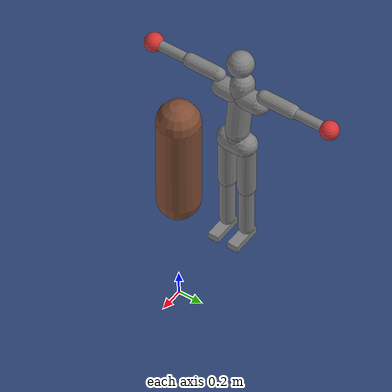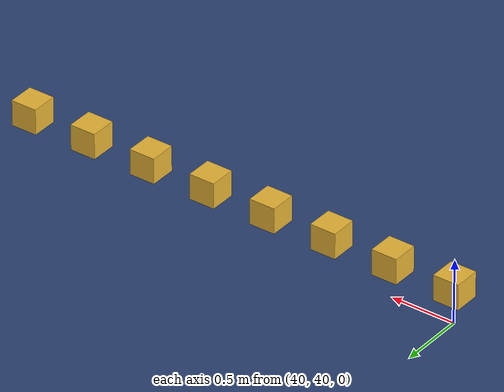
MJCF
<mujoco model="matt_bag">
  <compiler angle="degree" inertiafromgeom="true" autolimits="true"/>
  <option timestep="0.005" iterations="10" ls_iterations="10" integrator="implicitfast">
    <flag eulerdamp="disable"/>
  </option>
  <default>
    <geom contype="1" conaffinity="1" condim="3" friction="1.0 0.005 0.0001" density="1000" margin="0"/>
    <joint limited="true"/>
    <position ctrllimited="true"/>
  </default>
  <asset>
    <texture name="grid" type="2d" builtin="checker" rgb1=".18 .28 .48" rgb2=".14 .22 .40" width="300" height="300"/>
    <material name="grid" texture="grid" texrepeat="6 6" reflectance="0"/>
  </asset>
  <worldbody>
    <light pos="0 0 5" dir="0 0 -1" directional="true"/>
    <geom name="floor" type="plane" size="0 0 0.05" material="grid" friction="1.0 0.005 0.0001"/>

    <body name="a_pelvis" pos="-0.7500 0.0000 0.9733" quat="1.00000 0 0 0.00000">
      <freejoint name="a_root"/>
      <geom name="a_pelvis_geom" type="capsule" fromto="0.0000 -0.0700 0.0000 0.0000 0.0700 0.0000" size="0.0976" mass="7.5566" />
      <geom name="a_pelvis_up" type="capsule" fromto="0.0000 0.0000 0.0000 -0.0008 0.0000 0.0758" size="0.0878" mass="4.3714" />
      <body name="a_torso" pos="-0.0008 0.0000 0.0958">
        <joint name="a_abdomen_z" type="hinge" axis="0 0 1" range="-45 45" damping="0.5" armature="0.08" stiffness="0"/>
        <joint name="a_abdomen_y" type="hinge" axis="0 1 0" range="-60 30" damping="0.5" armature="0.08" stiffness="0"/>
        <joint name="a_abdomen_x" type="hinge" axis="1 0 0" range="-35 35" damping="0.5" armature="0.08" stiffness="0"/>
        <geom name="a_torso_geom" type="capsule" fromto="0.0000 0.0000 0.0200 -0.0653 -0.0000 0.4511" size="0.0937" mass="29.8200" />
        <geom name="a_chest_geom" type="capsule" fromto="-0.0402 -0.1614 0.3530 -0.0402 0.1614 0.3530" size="0.0843" mass="0.5"/>
        <geom name="a_head_geom" type="sphere" pos="-0.0385 -0.0000 0.6830" size="0.1049" mass="6.8040" />
        <body name="a_upper_arm_l" pos="-0.0503 0.2018 0.4412">
          <joint name="a_shoulder_x_l" type="hinge" axis="1 0 0" range="-170 30" damping="0.5" armature="0.03" stiffness="0"/>
          <joint name="a_shoulder_z_l" type="hinge" axis="0 0 1" range="-110 110" damping="0.5" armature="0.03" stiffness="0"/>
          <geom name="a_upper_arm_l_geom" type="capsule" fromto="0.0000 0.0000 0.0000 0.0000 0.2524 0.0000" size="0.0571" mass="2.3520" />
          <body name="a_forearm_l" pos="0.0000 0.2524 0.0000">
            <joint name="a_elbow_l" type="hinge" axis="0 0 1" range="-150 0" damping="0.5" armature="0.02" stiffness="0"/>
            <geom name="a_forearm_l_geom" type="capsule" fromto="0.0000 0.0000 0.0000 0.0000 0.2567 0.0000" size="0.0408" mass="1.3440" />
            <geom name="a_glove_l" type="sphere" pos="0.0000 0.3242 0.0000" size="0.0750" mass="0.7870" rgba="0.85 0.2 0.2 1"/>
          </body>
        </body>
        <body name="a_upper_arm_r" pos="-0.0503 -0.2018 0.4412">
          <joint name="a_shoulder_x_r" type="hinge" axis="1 0 0" range="-30 170" damping="0.5" armature="0.03" stiffness="0"/>
          <joint name="a_shoulder_z_r" type="hinge" axis="0 0 1" range="-110 110" damping="0.5" armature="0.03" stiffness="0"/>
          <geom name="a_upper_arm_r_geom" type="capsule" fromto="0.0000 0.0000 0.0000 0.0000 -0.2524 0.0000" size="0.0571" mass="2.3520" />
          <body name="a_forearm_r" pos="0.0000 -0.2524 0.0000">
            <joint name="a_elbow_r" type="hinge" axis="0 0 1" range="0 150" damping="0.5" armature="0.02" stiffness="0"/>
            <geom name="a_forearm_r_geom" type="capsule" fromto="0.0000 0.0000 0.0000 0.0000 -0.2567 0.0000" size="0.0408" mass="1.3440" />
            <geom name="a_glove_r" type="sphere" pos="0.0000 -0.3242 0.0000" size="0.0750" mass="0.7870" rgba="0.85 0.2 0.2 1"/>
          </body>
        </body>
      </body>
      <body name="a_thigh_l" pos="0.0008 0.0857 -0.0302">
        <joint name="a_hip_x_l" type="hinge" axis="1 0 0" range="-40 40" damping="0.5" armature="0.1" stiffness="0"/>
        <joint name="a_hip_z_l" type="hinge" axis="0 0 1" range="-35 35" damping="0.5" armature="0.1" stiffness="0"/>
        <joint name="a_hip_y_l" type="hinge" axis="0 1 0" range="-120 30" damping="0.5" armature="0.1" stiffness="0"/>
        <geom name="a_thigh_l_geom" type="capsule" fromto="0.0000 0.0000 0.0000 0.0000 0.0000 -0.4154" size="0.0737" mass="8.4000" />
        <body name="a_shin_l" pos="0.0000 0.0000 -0.4154">
          <joint name="a_knee_l" type="hinge" axis="0 1 0" range="0 150" damping="0.5" armature="0.1" stiffness="0"/>
          <geom name="a_shin_l_geom" type="capsule" fromto="0.0000 0.0000 0.0000 0.0000 0.0000 -0.4309" size="0.0608" mass="3.9060" />
          <body name="a_foot_l" pos="0.0000 0.0000 -0.4309">
            <joint name="a_ankle_y_l" type="hinge" axis="0 1 0" range="-20 50" damping="0.5" armature="0.03" stiffness="0"/>
            <joint name="a_ankle_x_l" type="hinge" axis="1 0 0" range="-25 25" damping="0.5" armature="0.03" stiffness="0"/>
            <geom name="a_foot_l_geom" type="box" pos="0.0581 0.0000 -0.0700" size="0.1262 0.0450 0.0280" mass="1.2180" friction="1.0 0.005 0.0001"/>
            <site name="a_foot_l_site" pos="0.0581 0.0000 -0.0700" size="0.01"/>
          </body>
        </body>
      </body>
      <body name="a_thigh_r" pos="0.0008 -0.0857 -0.0302">
        <joint name="a_hip_x_r" type="hinge" axis="1 0 0" range="-40 40" damping="0.5" armature="0.1" stiffness="0"/>
        <joint name="a_hip_z_r" type="hinge" axis="0 0 1" range="-35 35" damping="0.5" armature="0.1" stiffness="0"/>
        <joint name="a_hip_y_r" type="hinge" axis="0 1 0" range="-120 30" damping="0.5" armature="0.1" stiffness="0"/>
        <geom name="a_thigh_r_geom" type="capsule" fromto="0.0000 0.0000 0.0000 0.0000 0.0000 -0.4154" size="0.0737" mass="8.4000" />
        <body name="a_shin_r" pos="0.0000 0.0000 -0.4154">
          <joint name="a_knee_r" type="hinge" axis="0 1 0" range="0 150" damping="0.5" armature="0.1" stiffness="0"/>
          <geom name="a_shin_r_geom" type="capsule" fromto="0.0000 0.0000 0.0000 0.0000 0.0000 -0.4309" size="0.0608" mass="3.9060" />
          <body name="a_foot_r" pos="0.0000 0.0000 -0.4309">
            <joint name="a_ankle_y_r" type="hinge" axis="0 1 0" range="-20 50" damping="0.5" armature="0.03" stiffness="0"/>
            <joint name="a_ankle_x_r" type="hinge" axis="1 0 0" range="-25 25" damping="0.5" armature="0.03" stiffness="0"/>
            <geom name="a_foot_r_geom" type="box" pos="0.0581 0.0000 -0.0700" size="0.1262 0.0450 0.0280" mass="1.2180" friction="1.0 0.005 0.0001"/>
            <site name="a_foot_r_site" pos="0.0581 0.0000 -0.0700" size="0.01"/>
          </body>
        </body>
      </body>
    </body>
    <body name="bag" pos="0 0 2.45">
      <joint name="bag_swing" type="ball" damping="6"/>
      <geom name="bag_geom" type="capsule" fromto="0 0 -0.62 0 0 -1.42" size="0.17" mass="35" rgba="0.5 0.3 0.2 1"/>
      <site name="bag_head" pos="0 0 -0.82" size="0.02"/>
      <site name="bag_body" pos="0 0 -1.22" size="0.02"/>
    </body>
    <body name="cube_0" pos="40.0000 40.0000 0.3000"><freejoint name="cube_0"/><geom name="cube_0_geom" type="box" size="0.1 0.1 0.1" mass="1.0" rgba="0.9 0.7 0.2 1"/></body>
    <body name="cube_1" pos="40.5000 40.0000 0.3000"><freejoint name="cube_1"/><geom name="cube_1_geom" type="box" size="0.1 0.1 0.1" mass="1.0" rgba="0.9 0.7 0.2 1"/></body>
    <body name="cube_2" pos="41.0000 40.0000 0.3000"><freejoint name="cube_2"/><geom name="cube_2_geom" type="box" size="0.1 0.1 0.1" mass="1.0" rgba="0.9 0.7 0.2 1"/></body>
    <body name="cube_3" pos="41.5000 40.0000 0.3000"><freejoint name="cube_3"/><geom name="cube_3_geom" type="box" size="0.1 0.1 0.1" mass="1.0" rgba="0.9 0.7 0.2 1"/></body>
    <body name="cube_4" pos="42.0000 40.0000 0.3000"><freejoint name="cube_4"/><geom name="cube_4_geom" type="box" size="0.1 0.1 0.1" mass="1.0" rgba="0.9 0.7 0.2 1"/></body>
    <body name="cube_5" pos="42.5000 40.0000 0.3000"><freejoint name="cube_5"/><geom name="cube_5_geom" type="box" size="0.1 0.1 0.1" mass="1.0" rgba="0.9 0.7 0.2 1"/></body>
    <body name="cube_6" pos="43.0000 40.0000 0.3000"><freejoint name="cube_6"/><geom name="cube_6_geom" type="box" size="0.1 0.1 0.1" mass="1.0" rgba="0.9 0.7 0.2 1"/></body>
    <body name="cube_7" pos="43.5000 40.0000 0.3000"><freejoint name="cube_7"/><geom name="cube_7_geom" type="box" size="0.1 0.1 0.1" mass="1.0" rgba="0.9 0.7 0.2 1"/></body>
  </worldbody>
  <contact>
    <exclude body1="a_pelvis" body2="a_torso"/>
    <exclude body1="a_pelvis" body2="a_thigh_l"/>
    <exclude body1="a_thigh_l" body2="a_shin_l"/>
    <exclude body1="a_shin_l" body2="a_foot_l"/>
    <exclude body1="a_torso" body2="a_upper_arm_l"/>
    <exclude body1="a_upper_arm_l" body2="a_forearm_l"/>
    <exclude body1="a_pelvis" body2="a_thigh_r"/>
    <exclude body1="a_thigh_r" body2="a_shin_r"/>
    <exclude body1="a_shin_r" body2="a_foot_r"/>
    <exclude body1="a_torso" body2="a_upper_arm_r"/>
    <exclude body1="a_upper_arm_r" body2="a_forearm_r"/>
  </contact>
  <actuator>
    <position name="a_abdomen_z" joint="a_abdomen_z" kp="473.85" kv="22.113" forcerange="-179.01 179.01" ctrlrange="-0.7854 0.7854"/>
    <position name="a_abdomen_y" joint="a_abdomen_y" kp="473.85" kv="22.113" forcerange="-179.01 179.01" ctrlrange="-1.0472 0.5236"/>
    <position name="a_abdomen_x" joint="a_abdomen_x" kp="473.85" kv="22.113" forcerange="-179.01 179.01" ctrlrange="-0.6109 0.6109"/>
    <position name="a_shoulder_x_l" joint="a_shoulder_x_l" kp="168.48" kv="8.424" forcerange="-105.3 105.3" ctrlrange="-2.9671 0.5236"/>
    <position name="a_shoulder_z_l" joint="a_shoulder_z_l" kp="168.48" kv="8.424" forcerange="-105.3 105.3" ctrlrange="-1.9199 1.9199"/>
    <position name="a_elbow_l" joint="a_elbow_l" kp="115.83" kv="5.791" forcerange="-73.71 73.71" ctrlrange="-2.6180 0.0000"/>
    <position name="a_shoulder_x_r" joint="a_shoulder_x_r" kp="168.48" kv="8.424" forcerange="-105.3 105.3" ctrlrange="-0.5236 2.9671"/>
    <position name="a_shoulder_z_r" joint="a_shoulder_z_r" kp="168.48" kv="8.424" forcerange="-105.3 105.3" ctrlrange="-1.9199 1.9199"/>
    <position name="a_elbow_r" joint="a_elbow_r" kp="115.83" kv="5.791" forcerange="-73.71 73.71" ctrlrange="0.0000 2.6180"/>
    <position name="a_hip_x_l" joint="a_hip_x_l" kp="631.8" kv="31.59" forcerange="-252.72 252.72" ctrlrange="-0.6981 0.6981"/>
    <position name="a_hip_z_l" joint="a_hip_z_l" kp="631.8" kv="31.59" forcerange="-252.72 252.72" ctrlrange="-0.6109 0.6109"/>
    <position name="a_hip_y_l" joint="a_hip_y_l" kp="631.8" kv="31.59" forcerange="-252.72 252.72" ctrlrange="-2.0944 0.5236"/>
    <position name="a_knee_l" joint="a_knee_l" kp="631.8" kv="31.59" forcerange="-273.78 273.78" ctrlrange="0.0000 2.6180"/>
    <position name="a_ankle_y_l" joint="a_ankle_y_l" kp="789.75" kv="31.59" forcerange="-231.66 231.66" ctrlrange="-0.3491 0.8727"/>
    <position name="a_ankle_x_l" joint="a_ankle_x_l" kp="84.24" kv="4.212" forcerange="-63.18 63.18" ctrlrange="-0.4363 0.4363"/>
    <position name="a_hip_x_r" joint="a_hip_x_r" kp="631.8" kv="31.59" forcerange="-252.72 252.72" ctrlrange="-0.6981 0.6981"/>
    <position name="a_hip_z_r" joint="a_hip_z_r" kp="631.8" kv="31.59" forcerange="-252.72 252.72" ctrlrange="-0.6109 0.6109"/>
    <position name="a_hip_y_r" joint="a_hip_y_r" kp="631.8" kv="31.59" forcerange="-252.72 252.72" ctrlrange="-2.0944 0.5236"/>
    <position name="a_knee_r" joint="a_knee_r" kp="631.8" kv="31.59" forcerange="-273.78 273.78" ctrlrange="0.0000 2.6180"/>
    <position name="a_ankle_y_r" joint="a_ankle_y_r" kp="789.75" kv="31.59" forcerange="-231.66 231.66" ctrlrange="-0.3491 0.8727"/>
    <position name="a_ankle_x_r" joint="a_ankle_x_r" kp="84.24" kv="4.212" forcerange="-63.18 63.18" ctrlrange="-0.4363 0.4363"/>
  </actuator>
  <keyframe>
    <key name="stand" qpos="-0.7500 0.0000 0.9536 1.00000 0 0 0.00000 0.0000 0.0000 0.0000 -1.3265 -0.7330 -1.9548 1.3265 0.7330 1.9548 0.0000 0.0000 -0.1762 0.4538 -0.2775 0.0000 0.0000 0.0000 -0.1762 0.4538 -0.2775 0.0000 1 0 0 0 40.0000 40.0000 0.3000 1 0 0 0 40.5000 40.0000 0.3000 1 0 0 0 41.0000 40.0000 0.3000 1 0 0 0 41.5000 40.0000 0.3000 1 0 0 0 42.0000 40.0000 0.3000 1 0 0 0 42.5000 40.0000 0.3000 1 0 0 0 43.0000 40.0000 0.3000 1 0 0 0 43.5000 40.0000 0.3000 1 0 0 0"/>
  </keyframe>
</mujoco>
